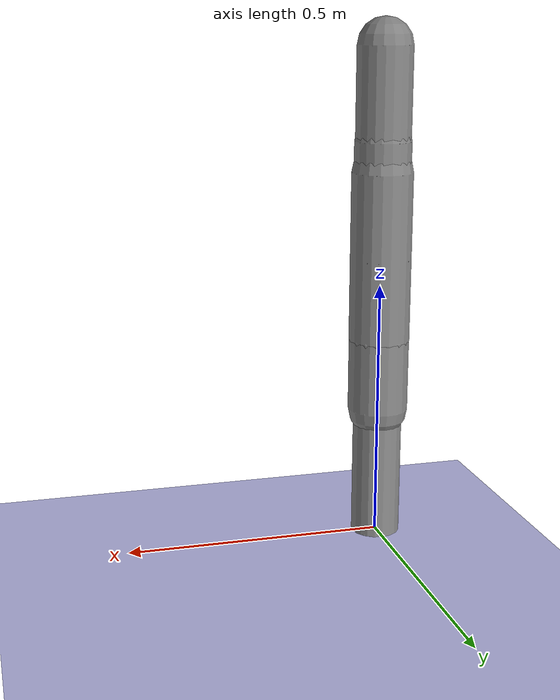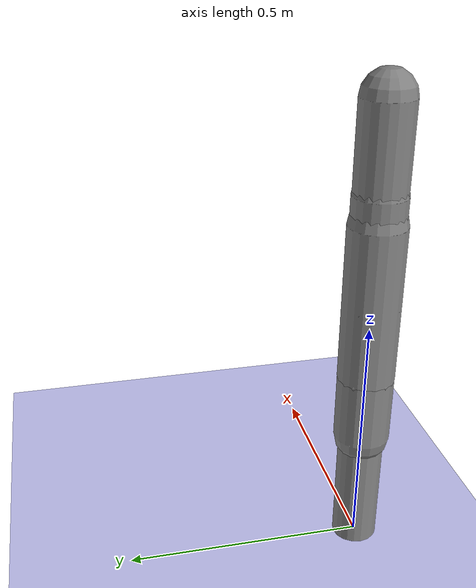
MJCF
<?xml version='1.0' encoding='UTF-8'?>
<mujoco model="robot_model">
  <worldbody>
    <light name="light" pos="0 -3 10" dir="0 0.5 -1" diffuse=".8 .8 .8" specular="0.1 0.1 0.1"/>
    <geom name="floor" type="plane" size="10.0 10.0 0.1" pos="0 0 0" rgba="0.8 0.8 1 1" contype="2" conaffinity="1"/>
    <body name="limb0" pos="0 0 0">
      <geom type="capsule" fromto="0 0 0 0 0 0.4099496350284605" size="0.04743534193448342" density="877.4759263082608" contype="1" conaffinity="2"/>
      <site type="sphere" size="0.01" name="limb0_site0" pos="0 0 0.2542562782934457"/>
      <site type="sphere" size="0.01" name="limb0_site1" pos="0 0 0.3221325612182085"/>
      <freejoint name="limb0_root"/>
      <body name="limb1" pos="0 0 0.2542562782934457">
        <geom type="capsule" fromto="0 0 0 0 0 0.2999583254750588" size="0.058183619747629485" density="740.1828998792604" contype="1" conaffinity="2"/>
        <site type="sphere" size="0.01" name="limb1_site0" pos="0 0 0.07982799083501751"/>
        <body name="limb2" pos="0 0 0.07982799083501751">
          <geom type="capsule" fromto="0 0 0 0 0 0.42075223148732316" size="0.029294916785572153" density="1138.8241278267756" contype="1" conaffinity="2"/>
          <joint name="joint_limb1_limb2_0" type="hinge" axis="0 1 0" range="-71.88129173774264 71.88129173774264" damping="5.0"/>
        </body>
        <joint name="joint_limb0_limb1_0" type="hinge" axis="0 1 0" range="-119.50965052353241 119.50965052353241" damping="5.0"/>
      </body>
      <body name="limb3" pos="0 0 0.3221325612182085">
        <geom type="capsule" fromto="0 0 0 0 0 0.2989690781950476" size="0.050309153812331656" density="823.4497281574163" contype="1" conaffinity="2"/>
        <site type="sphere" size="0.01" name="limb3_site0" pos="0 0 0.27249940231238534"/>
        <site type="sphere" size="0.01" name="limb3_site1" pos="0 0 0.07225356546491618"/>
        <site type="sphere" size="0.01" name="limb3_site2" pos="0 0 0.2420784842792399"/>
        <body name="limb4" pos="0 0 0.27249940231238534">
          <geom type="capsule" fromto="0 0 0 0 0 0.18291741476349366" size="0.05421591832810003" density="1031.368832226133" contype="1" conaffinity="2"/>
          <joint name="joint_limb3_limb4_0" type="hinge" axis="0 0 1" range="-116.79261899246464 116.79261899246464" damping="5.0"/>
        </body>
        <body name="limb5" pos="0 0 0.07225356546491618">
          <geom type="capsule" fromto="0 0 0 0 0 0.3248927368913828" size="0.0586424832313628" density="607.0916745367458" contype="1" conaffinity="2"/>
          <site type="sphere" size="0.01" name="limb5_site0" pos="0 0 0.3211453946205327"/>
          <body name="limb6" pos="0 0 0.3211453946205327">
            <geom type="capsule" fromto="0 0 0 0 0 0.2382089942244294" size="0.05271733776593019" density="953.4100928451663" contype="1" conaffinity="2"/>
            <joint name="joint_limb5_limb6_0" type="hinge" axis="1 0 0" range="-110.66857311312557 110.66857311312557" damping="5.0"/>
          </body>
          <joint name="joint_limb3_limb5_0" type="hinge" axis="0 1 0" range="-108.81183206591798 108.81183206591798" damping="5.0"/>
        </body>
        <body name="limb7" pos="0 0 0.2420784842792399">
          <geom type="capsule" fromto="0 0 0 0 0 0.33444922592509313" size="0.0315332302803031" density="843.2724017386142" contype="1" conaffinity="2"/>
          <joint name="joint_limb3_limb7_0" type="hinge" axis="1 0 0" range="-76.04759520061859 76.04759520061859" damping="5.0"/>
        </body>
        <joint name="joint_limb0_limb3_0" type="hinge" axis="0 1 0" range="-61.46558493556708 61.46558493556708" damping="5.0"/>
      </body>
    </body>
  </worldbody>
  <actuator>
    <position name="position_actuator_joint_limb0_limb1_0" joint="joint_limb0_limb1_0" gear="1.923415512406648" inheritrange="1" kp="100.0"/>
    <position name="position_actuator_joint_limb1_limb2_0" joint="joint_limb1_limb2_0" gear="1.1538932497909002" inheritrange="1" kp="100.0"/>
    <position name="position_actuator_joint_limb0_limb3_0" joint="joint_limb0_limb3_0" gear="1.601725357683094" inheritrange="1" kp="100.0"/>
    <position name="position_actuator_joint_limb3_limb4_0" joint="joint_limb3_limb4_0" gear="0.5220594574480539" inheritrange="1" kp="100.0"/>
    <position name="position_actuator_joint_limb3_limb5_0" joint="joint_limb3_limb5_0" gear="0.8388041426259866" inheritrange="1" kp="100.0"/>
    <position name="position_actuator_joint_limb5_limb6_0" joint="joint_limb5_limb6_0" gear="0.5200324229517321" inheritrange="1" kp="100.0"/>
    <position name="position_actuator_joint_limb3_limb7_0" joint="joint_limb3_limb7_0" gear="0.9326318216468157" inheritrange="1" kp="100.0"/>
  </actuator>
</mujoco>
